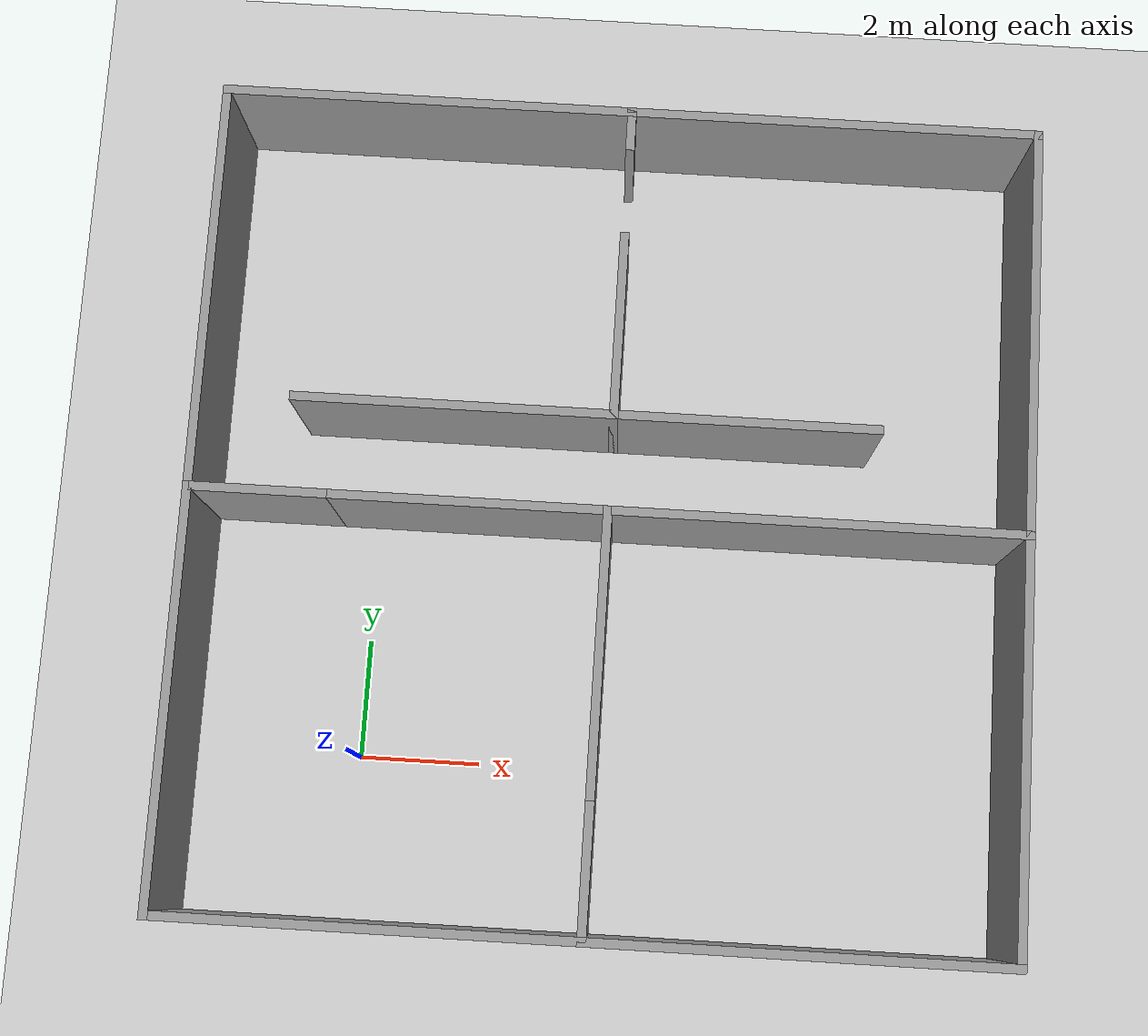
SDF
<sdf version="1.6">
 <world name="default">
  <light name="sun" type="directional">
   <pose>0 0 10 0 -0 0</pose>
   <diffuse>0.8 0.8 0.8 1</diffuse>
   <specular>0.2 0.2 0.2 1</specular>
   <attenuation>
    <range>1000</range>
    <constant>0.9</constant>
    <linear>0.01</linear>
    <quadratic>0.001</quadratic>
   </attenuation>
   <direction>-0.5 0.1 -0.9</direction>
  </light>
  <model name="ground_plane">
   <static>1</static>
   <link name="link">
    <collision name="collision">
     <geometry><plane><normal>0 0 1</normal><size>100 100</size></plane></geometry>
     <surface>
      <contact><collide_bitmask>65535</collide_bitmask></contact>
      <friction><ode><mu>100</mu><mu2>50</mu2></ode></friction>
     </surface>
    </collision>
    <visual name="visual">
     <cast_shadows>0</cast_shadows>
     <geometry><plane><normal>0 0 1</normal><size>100 100</size></plane></geometry>
     <material>
      <script><uri>file://media/materials/scripts/gazebo.material</uri><name>Gazebo/Grey</name></script>
     </material>
    </visual>
   </link>
  </model>
  <gravity>0 0 -9.8</gravity>
  <magnetic_field>6e-06 2.3e-05 -4.2e-05</magnetic_field>
  <atmosphere type="adiabatic"/>
  <physics name="default_physics" default="0" type="ode">
   <max_step_size>0.001</max_step_size>
   <real_time_factor>1</real_time_factor>
   <real_time_update_rate>1000</real_time_update_rate>
  </physics>
  <scene><ambient>0.4 0.4 0.4 1</ambient><background>0.7 0.7 0.7 1</background><shadows>1</shadows></scene>
  <audio><device>default</device></audio>
  <spherical_coordinates>
   <surface_model>EARTH_WGS84</surface_model>
   <latitude_deg>0</latitude_deg>
   <longitude_deg>0</longitude_deg>
   <elevation>0</elevation>
   <heading_deg>0</heading_deg>
  </spherical_coordinates>
  <model name="LVL_Six">
   <pose>3.96809 4.06684 0 0 -0 0</pose>
   <link name="Wall_103">
    <collision name="Wall_103_Collision">
     <geometry><box><size>4.75 0.15 2.5</size></box></geometry>
     <pose>0 0 1.25 0 -0 0</pose>
    </collision>
    <visual name="Wall_103_Visual">
     <pose>0 0 1.25 0 -0 0</pose>
     <geometry><box><size>4.75 0.15 2.5</size></box></geometry>
     <material>
      <script><uri>file://media/materials/scripts/gazebo.material</uri><name>Gazebo/Grey</name></script>
      <ambient>1 1 1 1</ambient>
     </material>
     <meta><layer>0</layer></meta>
    </visual>
    <pose>-0 -2.3 0 0 -0 1.5708</pose>
   </link>
   <link name="Wall_108">
    <collision name="Wall_108_Collision">
     <geometry><box><size>4.65 0.15 2.5</size></box></geometry>
     <pose>0 0 1.25 0 -0 0</pose>
    </collision>
    <visual name="Wall_108_Visual">
     <pose>0 0 1.25 0 -0 0</pose>
     <geometry><box><size>4.65 0.15 2.5</size></box></geometry>
     <material>
      <script><uri>file://media/materials/scripts/gazebo.material</uri><name>Gazebo/Grey</name></script>
      <ambient>1 1 1 1</ambient>
     </material>
     <meta><layer>0</layer></meta>
    </visual>
    <pose>-2.25 0 0 0 -0 0</pose>
   </link>
   <link name="Wall_23">
    <collision name="Wall_23_Collision">
     <geometry><box><size>7 0.15 2.5</size></box></geometry>
     <pose>0 0 1.25 0 -0 0</pose>
    </collision>
    <visual name="Wall_23_Visual">
     <pose>0 0 1.25 0 -0 0</pose>
     <geometry><box><size>7 0.15 2.5</size></box></geometry>
     <material>
      <script><uri>file://media/materials/scripts/gazebo.material</uri><name>Gazebo/Grey</name></script>
      <ambient>1 1 1 1</ambient>
     </material>
     <meta><layer>0</layer></meta>
    </visual>
    <pose>-3.425 -6.85 0 0 -0 3.14159</pose>
   </link>
   <link name="Wall_24">
    <collision name="Wall_24_Collision">
     <geometry><box><size>7 0.15 2.5</size></box></geometry>
     <pose>0 0 1.25 0 -0 0</pose>
    </collision>
    <visual name="Wall_24_Visual">
     <pose>0 0 1.25 0 -0 0</pose>
     <geometry><box><size>7 0.15 2.5</size></box></geometry>
     <material>
      <script><uri>file://media/materials/scripts/gazebo.material</uri><name>Gazebo/Grey</name></script>
      <ambient>1 1 1 1</ambient>
     </material>
     <meta><layer>0</layer></meta>
    </visual>
    <pose>-6.85 -3.425 0 0 -0 1.5708</pose>
   </link>
   <link name="Wall_28">
    <collision name="Wall_28_Collision">
     <geometry><box><size>7 0.15 2.5</size></box></geometry>
     <pose>0 0 1.25 0 -0 0</pose>
    </collision>
    <visual name="Wall_28_Visual">
     <pose>0 0 1.25 0 -0 0</pose>
     <geometry><box><size>7 0.15 2.5</size></box></geometry>
     <material>
      <script><uri>file://media/materials/scripts/gazebo.material</uri><name>Gazebo/Grey</name></script>
      <ambient>1 1 1 1</ambient>
     </material>
     <meta><layer>0</layer></meta>
    </visual>
    <pose>3.425 -6.85 0 0 -0 3.14159</pose>
   </link>
   <link name="Wall_31">
    <collision name="Wall_31_Collision">
     <geometry><box><size>7 0.15 2.5</size></box></geometry>
     <pose>0 0 1.25 0 -0 0</pose>
    </collision>
    <visual name="Wall_31_Visual">
     <pose>0 0 1.25 0 -0 0</pose>
     <geometry><box><size>7 0.15 2.5</size></box></geometry>
     <material>
      <script><uri>file://media/materials/scripts/gazebo.material</uri><name>Gazebo/Grey</name></script>
      <ambient>1 1 1 1</ambient>
     </material>
     <meta><layer>0</layer></meta>
    </visual>
    <pose>-6.85 3.425 0 0 -0 1.5708</pose>
   </link>
   <link name="Wall_34">
    <collision name="Wall_34_Collision">
     <geometry><box><size>7 0.15 2.5</size></box></geometry>
     <pose>0 0 1.25 0 -0 0</pose>
    </collision>
    <visual name="Wall_34_Visual">
     <pose>0 0 1.25 0 -0 0</pose>
     <geometry><box><size>7 0.15 2.5</size></box></geometry>
     <material>
      <script><uri>file://media/materials/scripts/gazebo.material</uri><name>Gazebo/Grey</name></script>
      <ambient>1 1 1 1</ambient>
     </material>
     <meta><layer>0</layer></meta>
    </visual>
    <pose>3.425 6.85 0 0 -0 0</pose>
   </link>
   <link name="Wall_37">
    <collision name="Wall_37_Collision">
     <geometry><box><size>7 0.15 2.5</size></box></geometry>
     <pose>0 0 1.25 0 -0 0</pose>
    </collision>
    <visual name="Wall_37_Visual">
     <pose>0 0 1.25 0 -0 0</pose>
     <geometry><box><size>7 0.15 2.5</size></box></geometry>
     <material>
      <script><uri>file://media/materials/scripts/gazebo.material</uri><name>Gazebo/Grey</name></script>
      <ambient>1 1 1 1</ambient>
     </material>
     <meta><layer>0</layer></meta>
    </visual>
    <pose>-3.425 6.85 0 0 -0 3.14159</pose>
   </link>
   <link name="Wall_50">
    <collision name="Wall_50_Collision">
     <geometry><box><size>5.4 0.15 2.5</size></box></geometry>
     <pose>0 0 1.25 0 -0 0</pose>
    </collision>
    <visual name="Wall_50_Visual">
     <pose>0 0 1.25 0 -0 0</pose>
     <geometry><box><size>5.4 0.15 2.5</size></box></geometry>
     <material>
      <script><uri>file://media/materials/scripts/gazebo.material</uri><name>Gazebo/Grey</name></script>
      <ambient>1 1 1 1</ambient>
     </material>
     <meta><layer>0</layer></meta>
    </visual>
    <pose>-2.625 1.6 0 0 -0 0</pose>
   </link>
   <link name="Wall_58">
    <collision name="Wall_58_Collision">
     <geometry><box><size>4.5 0.15 2.5</size></box></geometry>
     <pose>0 0 1.25 0 -0 0</pose>
    </collision>
    <visual name="Wall_58_Visual">
     <pose>0 0 1.25 0 -0 0</pose>
     <geometry><box><size>4.5 0.15 2.5</size></box></geometry>
     <material>
      <script><uri>file://media/materials/scripts/gazebo.material</uri><name>Gazebo/Grey</name></script>
      <ambient>1 1 1 1</ambient>
     </material>
     <meta><layer>0</layer></meta>
    </visual>
    <pose>2.175 1.6 0 0 -0 3.14159</pose>
   </link>
   <link name="Wall_86">
    <collision name="Wall_86_Collision">
     <geometry><box><size>3.2 0.15 2.5</size></box></geometry>
     <pose>0 0 1.25 0 -0 0</pose>
    </collision>
    <visual name="Wall_86_Visual">
     <pose>0 0 1.25 0 -0 0</pose>
     <geometry><box><size>3.2 0.15 2.5</size></box></geometry>
     <material>
      <script><uri>file://media/materials/scripts/gazebo.material</uri><name>Gazebo/Grey</name></script>
      <ambient>1 1 1 1</ambient>
     </material>
     <meta><layer>0</layer></meta>
    </visual>
    <pose>-0 3.125 0 0 -0 1.5708</pose>
   </link>
   <link name="Wall_89">
    <collision name="Wall_89_Collision">
     <geometry><box><size>0.75 0.15 2.5</size></box></geometry>
     <pose>0 0 1.25 0 -0 0</pose>
    </collision>
    <visual name="Wall_89_Visual">
     <pose>0 0 1.25 0 -0 0</pose>
     <geometry><box><size>0.75 0.15 2.5</size></box></geometry>
     <material>
      <script><uri>file://media/materials/scripts/gazebo.material</uri><name>Gazebo/Grey</name></script>
      <ambient>1 1 1 1</ambient>
     </material>
     <meta><layer>0</layer></meta>
    </visual>
    <pose>-0 6.55 0 0 -0 1.5708</pose>
   </link>
   <link name="Wall_93">
    <collision name="Wall_93_Collision">
     <geometry><box><size>7 0.15 2.5</size></box></geometry>
     <pose>0 0 1.25 0 -0 0</pose>
    </collision>
    <visual name="Wall_93_Visual">
     <pose>0 0 1.25 0 -0 0</pose>
     <geometry><box><size>7 0.15 2.5</size></box></geometry>
     <material>
      <script><uri>file://media/materials/scripts/gazebo.material</uri><name>Gazebo/Grey</name></script>
      <ambient>1 1 1 1</ambient>
     </material>
     <meta><layer>0</layer></meta>
    </visual>
    <pose>6.85 -3.425 0 0 -0 1.5708</pose>
   </link>
   <link name="Wall_94">
    <collision name="Wall_94_Collision">
     <geometry><box><size>7 0.15 2.5</size></box></geometry>
     <pose>0 0 1.25 0 -0 0</pose>
    </collision>
    <visual name="Wall_94_Visual">
     <pose>0 0 1.25 0 -0 0</pose>
     <geometry><box><size>7 0.15 2.5</size></box></geometry>
     <material>
      <script><uri>file://media/materials/scripts/gazebo.material</uri><name>Gazebo/Grey</name></script>
      <ambient>1 1 1 1</ambient>
     </material>
     <meta><layer>0</layer></meta>
    </visual>
    <pose>3.425 0 0 0 -0 3.14159</pose>
   </link>
   <link name="Wall_99">
    <collision name="Wall_99_Collision">
     <geometry><box><size>7 0.15 2.5</size></box></geometry>
     <pose>0 0 1.25 0 -0 0</pose>
    </collision>
    <visual name="Wall_99_Visual">
     <pose>0 0 1.25 0 -0 0</pose>
     <geometry><box><size>7 0.15 2.5</size></box></geometry>
     <material>
      <script><uri>file://media/materials/scripts/gazebo.material</uri><name>Gazebo/Grey</name></script>
      <ambient>1 1 1 1</ambient>
     </material>
     <meta><layer>0</layer></meta>
    </visual>
    <pose>6.85 3.425 0 0 -0 1.5708</pose>
   </link>
   <static>1</static>
  </model>
  <model name="asd">
   <pose>0.593871 0.642803 0 0 -0 0</pose>
   <link name="Wall_2">
    <collision name="Wall_2_Collision">
     <geometry><box><size>2.25 0.15 2.5</size></box></geometry>
     <pose>0 0 1.25 0 -0 0</pose>
    </collision>
    <visual name="Wall_2_Visual">
     <pose>0 0 1.25 0 -0 0</pose>
     <geometry><box><size>2.25 0.15 2.5</size></box></geometry>
     <material>
      <script><uri>file://media/materials/scripts/gazebo.material</uri><name>Gazebo/Grey</name></script>
      <ambient>1 1 1 1</ambient>
     </material>
     <meta><layer>0</layer></meta>
    </visual>
    <pose>3.3745 -2.37492 0 0 -0 1.5708</pose>
   </link>
   <link name="Wall_5">
    <collision name="Wall_5_Collision">
     <geometry><box><size>2.25 0.15 2.5</size></box></geometry>
     <pose>0 0 1.25 0 -0 0</pose>
    </collision>
    <visual name="Wall_5_Visual">
     <pose>0 0 1.25 0 -0 0</pose>
     <geometry><box><size>2.25 0.15 2.5</size></box></geometry>
     <material>
      <script><uri>file://media/materials/scripts/gazebo.material</uri><name>Gazebo/Grey</name></script>
      <ambient>1 1 1 1</ambient>
     </material>
     <meta><layer>0</layer></meta>
    </visual>
    <pose>-2.3245 3.42492 0 0 -0 3.14159</pose>
   </link>
   <static>1</static>
  </model>
 </world>
</sdf>
